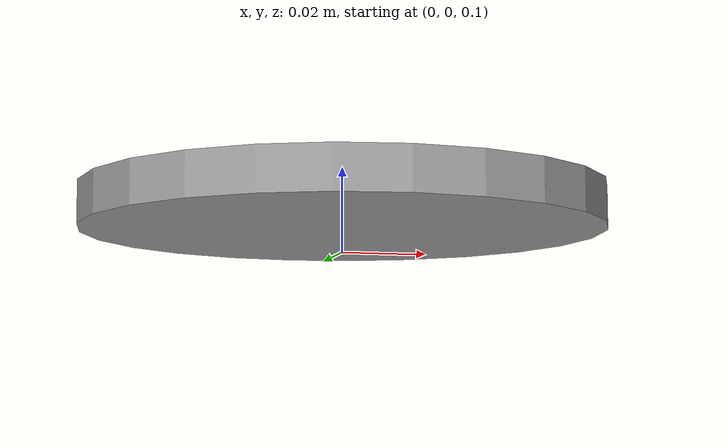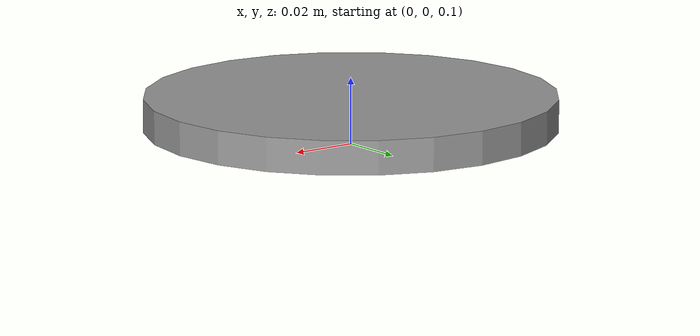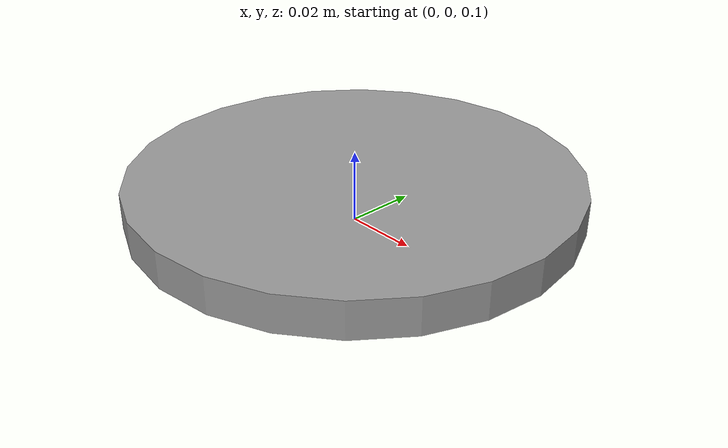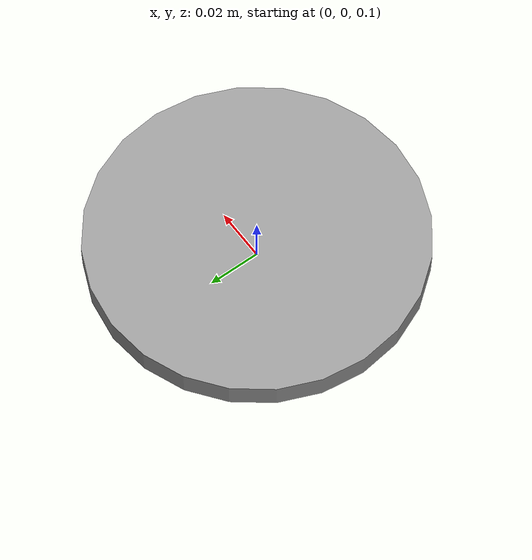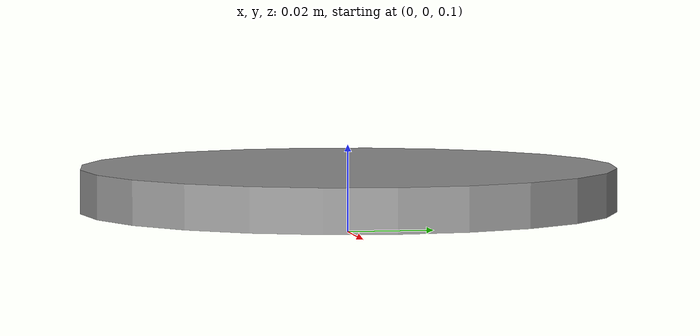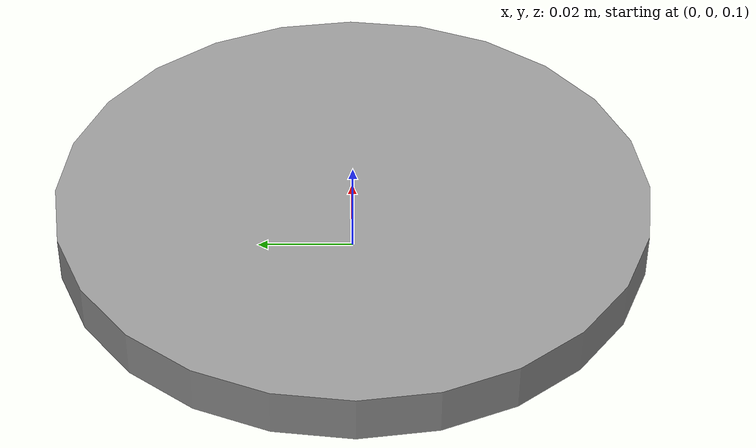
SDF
<?xml version='1.0'?>
<sdf version='1.6'>
  <model name='puck'>
  <pose>0 0 0.11 0 0 0</pose>
    <link name='link_0'>
      <inertial>
        <mass>0.01</mass>
        <inertia>
          <ixx>0.00833</ixx>
          <ixy>0</ixy>
          <ixz>0</ixz>
          <iyy>0.00833</iyy>
          <iyz>0</iyz>
          <izz>0.05</izz>
        </inertia>
        <pose frame=''>0 0 0 0 -0 0</pose>
      </inertial>
      <pose frame=''>0 0 0 0 -0 0</pose>
      <gravity>1</gravity>
      <self_collide>0</self_collide>
      <kinematic>0</kinematic>
      <enable_wind>0</enable_wind>
      <visual name='visual'>
        <pose frame=''>0 0 0 0 -0 0</pose>
        <geometry>
          <cylinder>
            <radius>0.0615</radius>
            <length>0.01</length>
          </cylinder>
        </geometry>
        <material>
          <lighting>1</lighting>
          <script>
            <uri>file://media/materials/scripts/gazebo.material</uri>
            <name>Gazebo/Grey</name>
          </script>
          <shader type='vertex'>
            <normal_map>__default__</normal_map>
          </shader>
          <ambient>0.3 0.3 0.3 1</ambient>
          <diffuse>0.7 0.7 0.7 1</diffuse>
          <specular>0.01 0.01 0.01 1</specular>
          <emissive>0 0 0 1</emissive>
        </material>
        <transparency>0</transparency>
        <cast_shadows>1</cast_shadows>
      </visual>
      <collision name='collision'>
        <pose frame=''>0 0 0 0 -0 0</pose>
        <geometry>
          <cylinder>
            <radius>0.0615</radius>
            <length>0.025</length>
          </cylinder>
        </geometry>
        <surface>
          <bounce>
            <restitution_coefficient>1</restitution_coefficient>
            <threshold>0</threshold>
          </bounce>
          <friction>
            <ode>
              <mu>0</mu>
              <mu2>0</mu2>
            </ode>
          </friction>
          <contact>
            <ode>
              <soft_cfm>0.1</soft_cfm>
              <soft_erp>0.1</soft_erp>
              <max_vel>1</max_vel>
            </ode>
          </contact>
        </surface>
      </collision>
    </link>
    <static>0</static>
    <allow_auto_disable>1</allow_auto_disable>
  </model>
</sdf>
